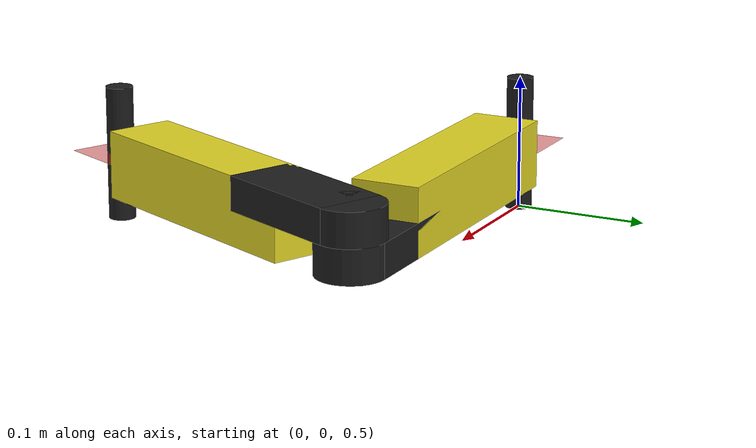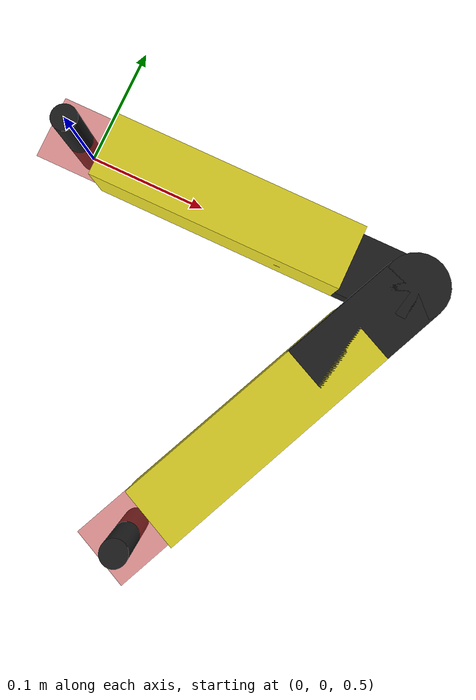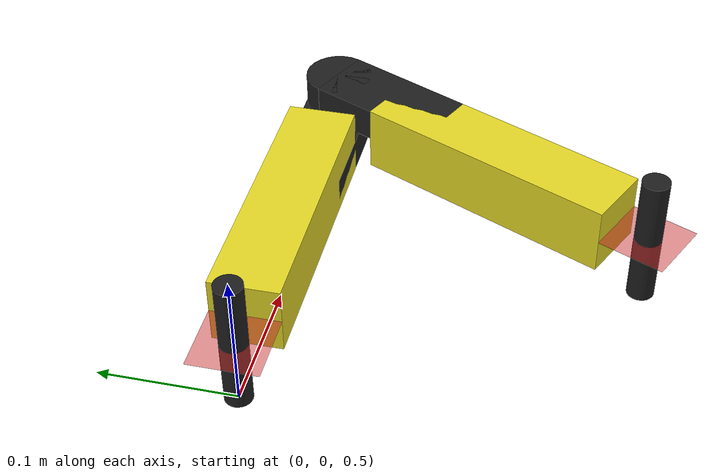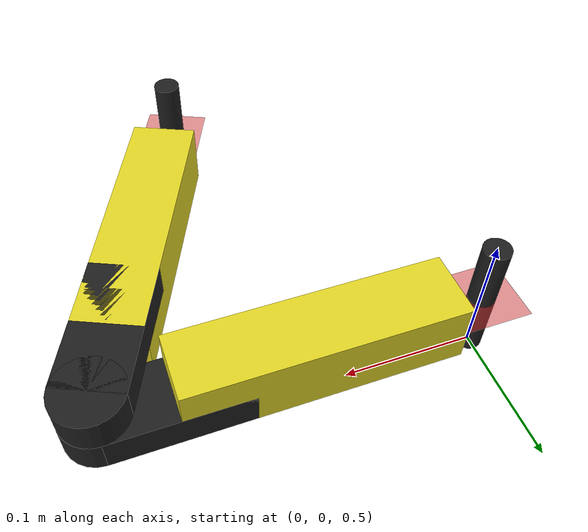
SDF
<sdf version='1.5'>
  <model name='1r_2link'>
    <self_collide>false</self_collide>
    <link name='first_link_handle'>
      <gravity>0</gravity>
      <pose frame=''>0 0 0.55 0 0 0</pose>
      <inertial>
        <mass>0.1</mass>
        <inertia>
          <ixx>0.000077233</ixx>
          <ixy>0</ixy>
          <ixz>0</ixz>
          <iyy>0.000077233</iyy>
          <iyz>0</iyz>
          <izz>0.00000405</izz>
        </inertia>
      </inertial>
      <collision name='first_link_handle_collision'>
        <pose frame=''>0 0 0 0 0 0</pose>
        <geometry>
          <cylinder>
            <length>0.1</length>
            <radius>0.01</radius>
          </cylinder>
        </geometry>
        <surface>
          <contact>
            <collide_bitmask>0x03</collide_bitmask>
          </contact>
        </surface>
      </collision>
      <visual name='first_link_handle_visual'>
        <geometry>
          <cylinder>
            <length>0.1</length>
            <radius>0.01</radius>
          </cylinder>
        </geometry>
        <material>
          <script>
            <name>Gazebo/Black</name>
            <uri>file://media/materials/scripts/gazebo.material</uri>
          </script>
        </material>
      </visual>
    </link>

    <link name='first_link'>
      <gravity>0</gravity>
      <pose>0.025 0 0.55 0 0 0</pose>
      <inertial>
        <pose>0.1 0 0 0 0 0</pose>
        <mass>4.5</mass>
        <inertia>
          <ixx>0.001801</ixx>
          <ixy>0</ixy>
          <ixz>0</ixz>
          <iyy>0.01575</iyy>
          <iyz>0</iyz>
          <izz>0.01575</izz>
        </inertia>
      </inertial>
      <collision name='first_link_collision_1'>
        <pose frame=''>0.1 0 0 0 0 0</pose>
        <geometry>
          <box>
            <size>0.2 0.05 0.05</size>
          </box>
        </geometry>
        <surface>
          <contact>
            <collide_bitmask>0x02</collide_bitmask>
          </contact>
        </surface>
      </collision>
      <collision name='first_link_collision_2'>
        <pose frame=''>0.2 0 -0.0125 0 0 0</pose>
        <geometry>
          <box>
            <size>0.1 0.05 0.025</size>
          </box>
        </geometry>
        <surface>
          <contact>
            <collide_bitmask>0x01</collide_bitmask>
          </contact>
        </surface>
      </collision>
      <collision name='fisrt_link_collision_3'>
        <pose frame=''>0.25 0 -0.0125 0 0 0</pose>
        <geometry>
          <cylinder>
            <length>0.025</length>
            <radius>0.025</radius>
          </cylinder>
        </geometry>
        <surface>
          <contact>
            <collide_bitmask>0x02</collide_bitmask>
          </contact>
        </surface>
      </collision>
      <visual name='first_link_visual'>
        <pose frame=''>-0.025 0 0 0 0 0</pose>
        <geometry>
          <box>
            <size>0.05 0.05 0.0002</size>
          </box>
        </geometry>
        <material>
          <script>
            <name>Gazebo/RedTransparentOverlay</name>
            <uri>file://media/materials/scripts/gazebo.material</uri>
          </script>
        </material>
      </visual>
      <visual name='first_link_visual_1'>
        <pose frame=''>0.1 0 0 0 0 0</pose>
        <geometry>
          <box>
            <size>0.2 0.05 0.05</size>
          </box>
        </geometry>
        <material>
          <script>
            <name>Gazebo/Yellow</name>
            <uri>file://media/materials/scripts/gazebo.material</uri>
          </script>
        </material>
      </visual>
      <visual name='first_link_visual_2'>
        <pose frame=''>0.2 0 -0.0125 0 0 0</pose>
        <geometry>
          <box>
            <size>0.1 0.05 0.025</size>
          </box>
        </geometry>
        <material>
          <script>
            <name>Gazebo/Black</name>
            <uri>file://media/materials/scripts/gazebo.material</uri>
          </script>
        </material>
      </visual>
      <visual name='first_link_visual_3'>
        <pose frame=''>0.25 0 -0.0125 0 0 0</pose>
        <geometry>
          <cylinder>
            <length>0.025</length>
            <radius>0.025</radius>
          </cylinder>
        </geometry>
        <material>
          <script>
            <name>Gazebo/Black</name>
            <uri>file://media/materials/scripts/gazebo.material</uri>
          </script>
        </material>
      </visual>
    </link>

    <joint name='first_link_handle_ft_joint' type='fixed'>
      <child>first_link</child>
      <parent>first_link_handle</parent>
      <axis>
        <xyz>0 0 0</xyz>
      </axis>
      <sensor name='first_link_ft' type='force_torque'>
        <force_torque>
          <frame>child</frame>
          <measure_direction>parent_to_child</measure_direction>
        </force_torque>
        <always_on>1</always_on>
        <visualize>1</visualize>
        <update_rate>100</update_rate>
        <pose>0 0 0 0 0 0</pose>
        <plugin name='first_link_ft_plugin' filename='libgazebo_yarp_forcetorque.so'>
          <yarpConfigurationFile>model://1r_2link/conf/first_link_ft.ini</yarpConfigurationFile>
        </plugin>
      </sensor>
    </joint>

    <link name='second_link'>
      <gravity>0</gravity>
      <pose>0.275 0 0.55 0 0 -2</pose>
      <inertial>
        <pose>0.15 0 0 0 0 0</pose>
        <mass>2</mass>
        <inertia>
          <ixx>0.0008</ixx>
          <ixy>0</ixy>
          <ixz>0</ixz>
          <iyy>0.007</iyy>
          <iyz>0</iyz>
          <izz>0.007</izz>
        </inertia>
      </inertial>
      <collision name='second_link_collision'>
        <pose frame=''>0 0 0.0125 0 0 0</pose>
        <geometry>
          <cylinder>
            <length>0.025</length>
            <radius>0.025</radius>
          </cylinder>
        </geometry>
        <surface>
          <contact>
            <collide_bitmask>0x01</collide_bitmask>
          </contact>
        </surface>
      </collision>
      <collision name='second_link_collision_1'>
        <pose frame=''>0.05 0 0.0125 0 0 0</pose>
        <geometry>
          <box>
            <size>0.1 0.05 0.025</size>
          </box>
        </geometry>
        <surface>
          <contact>
            <collide_bitmask>0x02</collide_bitmask>
          </contact>
        </surface>
      </collision>
      <collision name='second_link_collision_2'>
        <pose frame=''>0.15 0 0 0 0 0</pose>
        <geometry>
          <box>
            <size>0.2 0.05 0.05</size>
          </box>
        </geometry>
        <surface>
          <contact>
            <collide_bitmask>0x01</collide_bitmask>
          </contact>
        </surface>
      </collision>
      <collision name='second_link_collision_3'>
        <pose frame=''>0.275 0 0 0 0 0</pose>
        <geometry>
          <box>
            <size>0.05 0.05 0.0002</size>
          </box>
        </geometry>
        <surface>
          <contact>
            <collide_bitmask>0x00</collide_bitmask>
          </contact>
        </surface>
      </collision>
      <visual name='second_link_visual'>
        <pose frame=''>0 0 0.0125 0 0 0</pose>
        <geometry>
          <cylinder>
            <length>0.025</length>
            <radius>0.025</radius>
          </cylinder>
        </geometry>
        <material>
          <script>
            <name>Gazebo/Black</name>
            <uri>file://media/materials/scripts/gazebo.material</uri>
          </script>
        </material>
      </visual>
      <visual name='second_link_visual_1'>
        <pose frame=''>0.05 0 0.0125 0 0 0</pose>
        <geometry>
          <box>
            <size>0.1 0.05 0.025</size>
          </box>
        </geometry>
        <material>
          <script>
            <name>Gazebo/Black</name>
            <uri>file://media/materials/scripts/gazebo.material</uri>
          </script>
        </material>
      </visual>
      <visual name='second_link_visual_2'>
        <pose frame=''>0.15 0 0 0 0 0</pose>
        <geometry>
          <box>
            <size>0.2 0.05 0.05</size>
          </box>
        </geometry>
        <material>
          <script>
            <name>Gazebo/Yellow</name>
            <uri>file://media/materials/scripts/gazebo.material</uri>
          </script>
        </material>
      </visual>
      <visual name='second_link_visual_3'>
        <pose frame=''>0.275 0 0 0 0 0</pose>
        <geometry>
          <box>
            <size>0.05 0.05 0.0002</size>
          </box>
        </geometry>
        <material>
          <script>
            <name>Gazebo/RedTransparentOverlay</name>
            <uri>file://media/materials/scripts/gazebo.material</uri>
          </script>
        </material>
      </visual>
    </link>

    <joint name='first_joint' type='revolute'>
      <child>second_link</child>
      <parent>first_link</parent>
      <axis>
        <xyz>0 0 1</xyz>
        <limit>
          <lower>0</lower>
          <upper>3.14</upper>
          <effort>30</effort>
          <velocity>10</velocity>
        </limit>
        <dynamics>
          <damping>0.1</damping>
          <friction>0.1</friction>
          <spring_stiffness>0</spring_stiffness>
          <spring_reference>0</spring_reference>
        </dynamics>
      </axis>
    </joint>

    <link name='second_link_handle'>
      <gravity>0</gravity>
      <pose frame=''>0.1606 -0.2501 0.55 0 0 -2</pose>
      <inertial>
        <mass>0.1</mass>
        <inertia>
          <ixx>0.000077233</ixx>
          <ixy>0</ixy>
          <ixz>0</ixz>
          <iyy>0.000077233</iyy>
          <iyz>0</iyz>
          <izz>0.00000405</izz>
        </inertia>
      </inertial>
      <collision name='second_link_handle_collision'>
        <pose frame=''>0 0 0 0 0 0</pose>
        <geometry>
          <cylinder>
            <length>0.1</length>
            <radius>0.01</radius>
          </cylinder>
        </geometry>
        <surface>
          <contact>
            <collide_bitmask>0x03</collide_bitmask>
          </contact>
        </surface>
      </collision>
      <visual name='second_link_handle_visual'>
        <geometry>
          <cylinder>
            <length>0.1</length>
            <radius>0.01</radius>
          </cylinder>
        </geometry>
        <material>
          <script>
            <name>Gazebo/Black</name>
            <uri>file://media/materials/scripts/gazebo.material</uri>
          </script>
        </material>
      </visual>
    </link>

    <joint name='second_link_handle_ft_joint' type='fixed'>
      <child>second_link_handle</child>
      <parent>second_link</parent>
      <axis>
        <xyz>0 0 0</xyz>
      </axis>
      <sensor name='second_link_ft' type='force_torque'>
        <force_torque>
          <frame>child</frame>
          <measure_direction>child_to_parent</measure_direction>
        </force_torque>
        <always_on>1</always_on>
        <visualize>1</visualize>
        <update_rate>100</update_rate>
        <pose>0 0 0 0 0 0</pose>
        <plugin name='second_link_ft_plugin' filename='libgazebo_yarp_forcetorque.so'>
          <yarpConfigurationFile>model://1r_2link/conf/second_link_ft.ini</yarpConfigurationFile>
          <frame>child</frame>
          <measured_direction>child_to_parent</measured_direction>
        </plugin>
      </sensor>
    </joint>

    <plugin name='access_link_pose' filename='libgazebo_yarp_accesslinkpose.so'>
      <yarpConfigurationFile>model://1r_2link/conf/gazebo_accesslinkpose.ini</yarpConfigurationFile>
    </plugin>

  </model>
</sdf>
